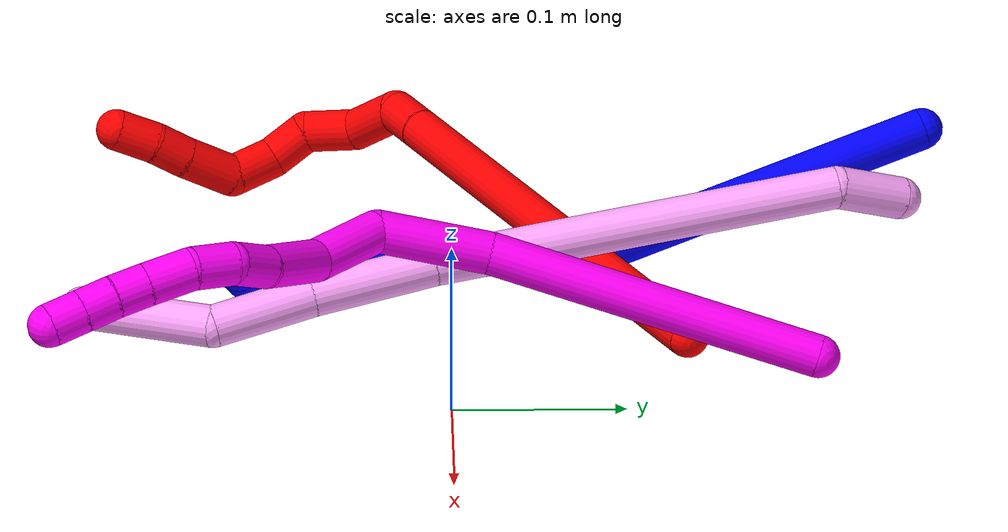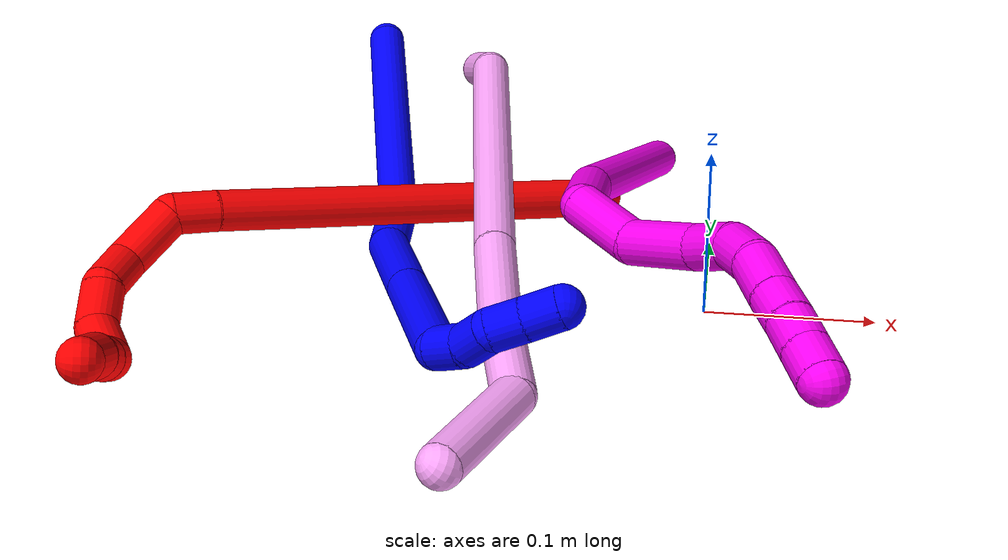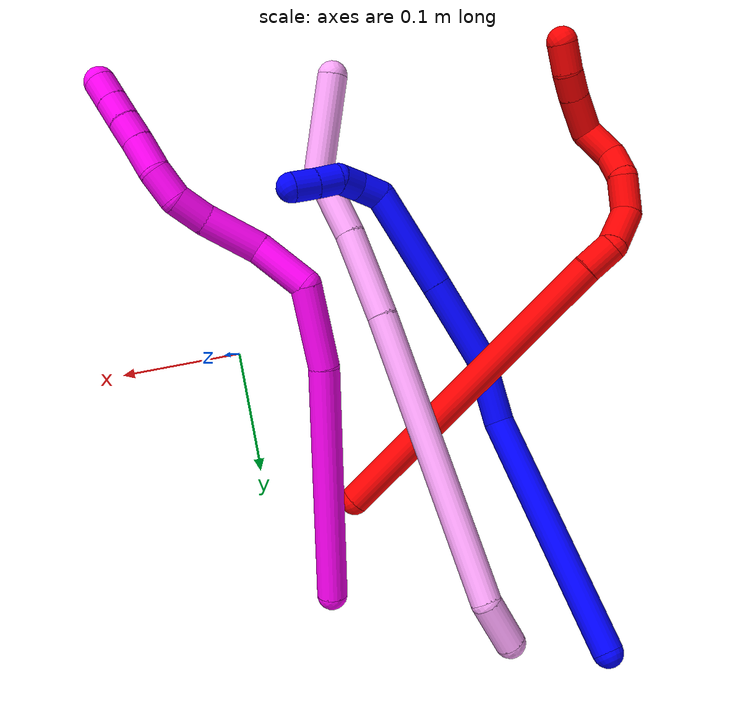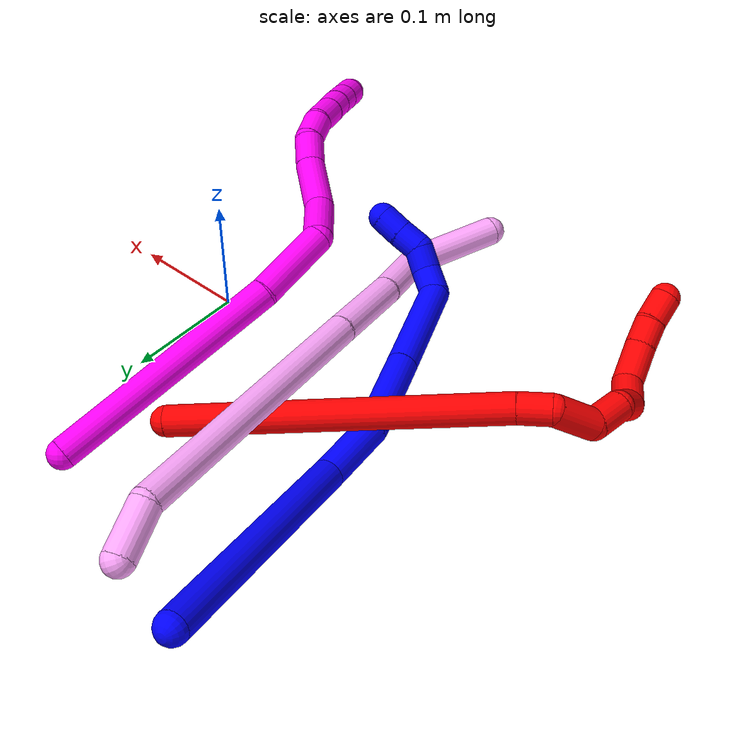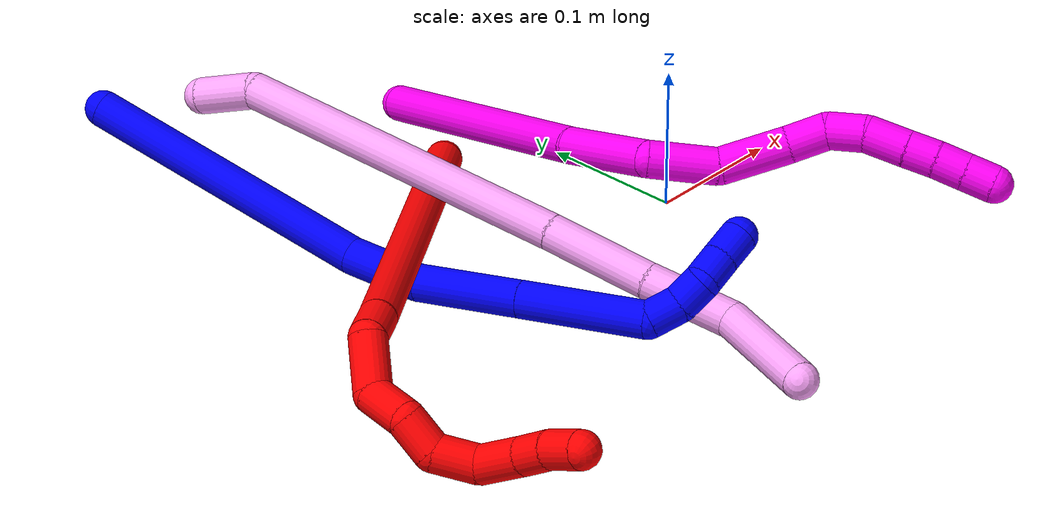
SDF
<sdf version="1.7">
 <world name="default">
  <model name="1">
   <static>0</static>
   <link name="1">
    <collision name="collision-cylinder-e_1_1_4">
     <pose>-0.000891 0.000561 -0.101064 -3.13605 -0.008818 2.01854</pose>
     <geometry><cylinder><radius>0.0125</radius><length>0.202139</length></cylinder></geometry>
     <surface>
      <friction><ode><mu>1.16</mu><mu2>1.16</mu2><slip1>0</slip1><slip2>0</slip2></ode></friction>
      <contact><ode><kp>1e+06</kp><kd>1</kd><max_vel>0</max_vel><min_depth>0.001</min_depth></ode></contact>
     </surface>
    </collision>
    <visual name="visual-cylinder-e_1_1_4">
     <pose>-0.000891 0.000561 -0.101064 -3.13605 -0.008818 2.01854</pose>
     <geometry><cylinder><radius>0.0125</radius><length>0.202139</length></cylinder></geometry>
     <material><ambient>0 0 1 1</ambient></material>
    </visual>
    <collision name="collision-cylinder-e_2_4_5">
     <pose>-0.005391 -0.00683 -0.228399 2.84769 -0.130734 -0.832766</pose>
     <geometry><cylinder><radius>0.0125</radius><length>0.055369</length></cylinder></geometry>
     <surface>
      <friction><ode><mu>1.16</mu><mu2>1.16</mu2><slip1>0</slip1><slip2>0</slip2></ode></friction>
      <contact><ode><kp>1e+06</kp><kd>1</kd><max_vel>0</max_vel><min_depth>0.001</min_depth></ode></contact>
     </surface>
    </collision>
    <visual name="visual-cylinder-e_2_4_5">
     <pose>-0.005391 -0.00683 -0.228399 2.84769 -0.130734 -0.832766</pose>
     <geometry><cylinder><radius>0.0125</radius><length>0.055369</length></cylinder></geometry>
     <material><ambient>0 0 1 1</ambient></material>
    </visual>
    <collision name="collision-cylinder-e_3_5_6">
     <pose>-0.003913 -0.026224 -0.288149 2.81227 0.142813 0.812967</pose>
     <geometry><cylinder><radius>0.0125</radius><length>0.071487</length></cylinder></geometry>
     <surface>
      <friction><ode><mu>1.16</mu><mu2>1.16</mu2><slip1>0</slip1><slip2>0</slip2></ode></friction>
      <contact><ode><kp>1e+06</kp><kd>1</kd><max_vel>0</max_vel><min_depth>0.001</min_depth></ode></contact>
     </surface>
    </collision>
    <visual name="visual-cylinder-e_3_5_6">
     <pose>-0.003913 -0.026224 -0.288149 2.81227 0.142813 0.812967</pose>
     <geometry><cylinder><radius>0.0125</radius><length>0.071487</length></cylinder></geometry>
     <material><ambient>0 0 1 1</ambient></material>
    </visual>
    <collision name="collision-cylinder-e_4_6_7">
     <pose>0.007696 -0.051219 -0.362388 2.82059 0.150687 0.872596</pose>
     <geometry><cylinder><radius>0.0125</radius><length>0.086893</length></cylinder></geometry>
     <surface>
      <friction><ode><mu>1.16</mu><mu2>1.16</mu2><slip1>0</slip1><slip2>0</slip2></ode></friction>
      <contact><ode><kp>1e+06</kp><kd>1</kd><max_vel>0</max_vel><min_depth>0.001</min_depth></ode></contact>
     </surface>
    </collision>
    <visual name="visual-cylinder-e_4_6_7">
     <pose>0.007696 -0.051219 -0.362388 2.82059 0.150687 0.872596</pose>
     <geometry><cylinder><radius>0.0125</radius><length>0.086893</length></cylinder></geometry>
     <material><ambient>0 0 1 1</ambient></material>
    </visual>
    <collision name="collision-cylinder-e_5_7_8">
     <pose>0.021947 -0.070338 -0.408962 2.37802 0.765078 1.57297</pose>
     <geometry><cylinder><radius>0.0125</radius><length>0.022319</length></cylinder></geometry>
     <surface>
      <friction><ode><mu>1.16</mu><mu2>1.16</mu2><slip1>0</slip1><slip2>0</slip2></ode></friction>
      <contact><ode><kp>1e+06</kp><kd>1</kd><max_vel>0</max_vel><min_depth>0.001</min_depth></ode></contact>
     </surface>
    </collision>
    <visual name="visual-cylinder-e_5_7_8">
     <pose>0.021947 -0.070338 -0.408962 2.37802 0.765078 1.57297</pose>
     <geometry><cylinder><radius>0.0125</radius><length>0.022319</length></cylinder></geometry>
     <material><ambient>0 0 1 1</ambient></material>
    </visual>
    <collision name="collision-cylinder-e_6_8_9">
     <pose>0.036129 -0.083281 -0.417648 1.94193 0.683937 0.959805</pose>
     <geometry><cylinder><radius>0.0125</radius><length>0.020424</length></cylinder></geometry>
     <surface>
      <friction><ode><mu>1.16</mu><mu2>1.16</mu2><slip1>0</slip1><slip2>0</slip2></ode></friction>
      <contact><ode><kp>1e+06</kp><kd>1</kd><max_vel>0</max_vel><min_depth>0.001</min_depth></ode></contact>
     </surface>
    </collision>
    <visual name="visual-cylinder-e_6_8_9">
     <pose>0.036129 -0.083281 -0.417648 1.94193 0.683937 0.959805</pose>
     <geometry><cylinder><radius>0.0125</radius><length>0.020424</length></cylinder></geometry>
     <material><ambient>0 0 1 1</ambient></material>
    </visual>
    <collision name="collision-cylinder-e_7_9_10">
     <pose>0.052145 -0.093931 -0.420988 1.71324 1.23783 1.37568</pose>
     <geometry><cylinder><radius>0.0125</radius><length>0.020239</length></cylinder></geometry>
     <surface>
      <friction><ode><mu>1.16</mu><mu2>1.16</mu2><slip1>0</slip1><slip2>0</slip2></ode></friction>
      <contact><ode><kp>1e+06</kp><kd>1</kd><max_vel>0</max_vel><min_depth>0.001</min_depth></ode></contact>
     </surface>
    </collision>
    <visual name="visual-cylinder-e_7_9_10">
     <pose>0.052145 -0.093931 -0.420988 1.71324 1.23783 1.37568</pose>
     <geometry><cylinder><radius>0.0125</radius><length>0.020239</length></cylinder></geometry>
     <material><ambient>0 0 1 1</ambient></material>
    </visual>
    <collision name="collision-cylinder-e_8_10_2">
     <pose>0.071502 -0.101093 -0.422223 1.76511 1.18638 1.37338</pose>
     <geometry><cylinder><radius>0.0125</radius><length>0.02113</length></cylinder></geometry>
     <surface>
      <friction><ode><mu>1.16</mu><mu2>1.16</mu2><slip1>0</slip1><slip2>0</slip2></ode></friction>
      <contact><ode><kp>1e+06</kp><kd>1</kd><max_vel>0</max_vel><min_depth>0.001</min_depth></ode></contact>
     </surface>
    </collision>
    <visual name="visual-cylinder-e_8_10_2">
     <pose>0.071502 -0.101093 -0.422223 1.76511 1.18638 1.37338</pose>
     <geometry><cylinder><radius>0.0125</radius><length>0.02113</length></cylinder></geometry>
     <material><ambient>0 0 1 1</ambient></material>
    </visual>
    <collision name="collision-sphere-2">
     <pose>0.081296 -0.10498 -0.422988 0 -0 0</pose>
     <geometry><sphere><radius>0.0125</radius></sphere></geometry>
     <surface>
      <friction><ode><mu>1.16</mu><mu2>1.16</mu2><slip1>0</slip1><slip2>0</slip2></ode></friction>
      <contact><ode><kp>1e+06</kp><kd>1</kd><max_vel>0</max_vel><min_depth>0.001</min_depth></ode></contact>
     </surface>
    </collision>
    <visual name="visual-sphere-2">
     <pose>0.081296 -0.10498 -0.422988 0 -0 0</pose>
     <geometry><sphere><radius>0.0125</radius></sphere></geometry>
     <material><ambient>0 0 1 1</ambient></material>
    </visual>
    <collision name="collision-sphere-10">
     <pose>0.061708 -0.097205 -0.421458 0 -0 0</pose>
     <geometry><sphere><radius>0.0125</radius></sphere></geometry>
     <surface>
      <friction><ode><mu>1.16</mu><mu2>1.16</mu2><slip1>0</slip1><slip2>0</slip2></ode></friction>
      <contact><ode><kp>1e+06</kp><kd>1</kd><max_vel>0</max_vel><min_depth>0.001</min_depth></ode></contact>
     </surface>
    </collision>
    <visual name="visual-sphere-10">
     <pose>0.061708 -0.097205 -0.421458 0 -0 0</pose>
     <geometry><sphere><radius>0.0125</radius></sphere></geometry>
     <material><ambient>0 0 1 1</ambient></material>
    </visual>
    <collision name="collision-sphere-9">
     <pose>0.042581 -0.090657 -0.420519 0 -0 0</pose>
     <geometry><sphere><radius>0.0125</radius></sphere></geometry>
     <surface>
      <friction><ode><mu>1.16</mu><mu2>1.16</mu2><slip1>0</slip1><slip2>0</slip2></ode></friction>
      <contact><ode><kp>1e+06</kp><kd>1</kd><max_vel>0</max_vel><min_depth>0.001</min_depth></ode></contact>
     </surface>
    </collision>
    <visual name="visual-sphere-9">
     <pose>0.042581 -0.090657 -0.420519 0 -0 0</pose>
     <geometry><sphere><radius>0.0125</radius></sphere></geometry>
     <material><ambient>0 0 1 1</ambient></material>
    </visual>
    <collision name="collision-sphere-4">
     <pose>-0.001782 0.001121 -0.202128 0 -0 0</pose>
     <geometry><sphere><radius>0.0125</radius></sphere></geometry>
     <surface>
      <friction><ode><mu>1.16</mu><mu2>1.16</mu2><slip1>0</slip1><slip2>0</slip2></ode></friction>
      <contact><ode><kp>1e+06</kp><kd>1</kd><max_vel>0</max_vel><min_depth>0.001</min_depth></ode></contact>
     </surface>
    </collision>
    <visual name="visual-sphere-4">
     <pose>-0.001782 0.001121 -0.202128 0 -0 0</pose>
     <geometry><sphere><radius>0.0125</radius></sphere></geometry>
     <material><ambient>0 0 1 1</ambient></material>
    </visual>
    <collision name="collision-sphere-1">
     <geometry><sphere><radius>0.0125</radius></sphere></geometry>
     <surface>
      <friction><ode><mu>1.16</mu><mu2>1.16</mu2><slip1>0</slip1><slip2>0</slip2></ode></friction>
      <contact><ode><kp>1e+06</kp><kd>1</kd><max_vel>0</max_vel><min_depth>0.001</min_depth></ode></contact>
     </surface>
    </collision>
    <visual name="visual-sphere-1">
     <geometry><sphere><radius>0.0125</radius></sphere></geometry>
     <material><ambient>0 0 1 1</ambient></material>
    </visual>
    <collision name="collision-sphere-8">
     <pose>0.029676 -0.075904 -0.414777 0 -0 0</pose>
     <geometry><sphere><radius>0.0125</radius></sphere></geometry>
     <surface>
      <friction><ode><mu>1.16</mu><mu2>1.16</mu2><slip1>0</slip1><slip2>0</slip2></ode></friction>
      <contact><ode><kp>1e+06</kp><kd>1</kd><max_vel>0</max_vel><min_depth>0.001</min_depth></ode></contact>
     </surface>
    </collision>
    <visual name="visual-sphere-8">
     <pose>0.029676 -0.075904 -0.414777 0 -0 0</pose>
     <geometry><sphere><radius>0.0125</radius></sphere></geometry>
     <material><ambient>0 0 1 1</ambient></material>
    </visual>
    <collision name="collision-sphere-5">
     <pose>-0.009 -0.014782 -0.254671 0 -0 0</pose>
     <geometry><sphere><radius>0.0125</radius></sphere></geometry>
     <surface>
      <friction><ode><mu>1.16</mu><mu2>1.16</mu2><slip1>0</slip1><slip2>0</slip2></ode></friction>
      <contact><ode><kp>1e+06</kp><kd>1</kd><max_vel>0</max_vel><min_depth>0.001</min_depth></ode></contact>
     </surface>
    </collision>
    <visual name="visual-sphere-5">
     <pose>-0.009 -0.014782 -0.254671 0 -0 0</pose>
     <geometry><sphere><radius>0.0125</radius></sphere></geometry>
     <material><ambient>0 0 1 1</ambient></material>
    </visual>
    <collision name="collision-sphere-6">
     <pose>0.001174 -0.037666 -0.321628 0 -0 0</pose>
     <geometry><sphere><radius>0.0125</radius></sphere></geometry>
     <surface>
      <friction><ode><mu>1.16</mu><mu2>1.16</mu2><slip1>0</slip1><slip2>0</slip2></ode></friction>
      <contact><ode><kp>1e+06</kp><kd>1</kd><max_vel>0</max_vel><min_depth>0.001</min_depth></ode></contact>
     </surface>
    </collision>
    <visual name="visual-sphere-6">
     <pose>0.001174 -0.037666 -0.321628 0 -0 0</pose>
     <geometry><sphere><radius>0.0125</radius></sphere></geometry>
     <material><ambient>0 0 1 1</ambient></material>
    </visual>
    <collision name="collision-sphere-7">
     <pose>0.014218 -0.064772 -0.403148 0 -0 0</pose>
     <geometry><sphere><radius>0.0125</radius></sphere></geometry>
     <surface>
      <friction><ode><mu>1.16</mu><mu2>1.16</mu2><slip1>0</slip1><slip2>0</slip2></ode></friction>
      <contact><ode><kp>1e+06</kp><kd>1</kd><max_vel>0</max_vel><min_depth>0.001</min_depth></ode></contact>
     </surface>
    </collision>
    <visual name="visual-sphere-7">
     <pose>0.014218 -0.064772 -0.403148 0 -0 0</pose>
     <geometry><sphere><radius>0.0125</radius></sphere></geometry>
     <material><ambient>0 0 1 1</ambient></material>
    </visual>
    <inertial>
     <pose>0.007409 -0.027796 -0.240525 0 -0 0</pose>
     <mass>0.5</mass>
     <inertia>
      <ixx>0.000463</ixx>
      <ixy>0</ixy>
      <ixz>0</ixz>
      <iyy>0.00092</iyy>
      <iyz>0</iyz>
      <izz>-1.1e-05</izz>
     </inertia>
    </inertial>
   </link>
   <pose>-0.249066 0.284091 0.068504 -1.29043 -0.061384 0.226186</pose>
  </model>
  <model name="2">
   <static>0</static>
   <link name="2">
    <collision name="collision-cylinder-e_1_1_4">
     <pose>-0.007382 -0.033591 0.129944 0.252968 -0.054948 -0.006989</pose>
     <geometry><cylinder><radius>0.0125</radius><length>0.268836</length></cylinder></geometry>
     <surface>
      <friction><ode><mu>1.16</mu><mu2>1.16</mu2><slip1>0</slip1><slip2>0</slip2></ode></friction>
      <contact><ode><kp>1e+06</kp><kd>1</kd><max_vel>0</max_vel><min_depth>0.001</min_depth></ode></contact>
     </surface>
    </collision>
    <visual name="visual-cylinder-e_1_1_4">
     <pose>-0.007382 -0.033591 0.129944 0.252968 -0.054948 -0.006989</pose>
     <geometry><cylinder><radius>0.0125</radius><length>0.268836</length></cylinder></geometry>
     <material><ambient>1 0 0 1</ambient></material>
    </visual>
    <collision name="collision-cylinder-e_2_4_5">
     <pose>-0.016049 -0.069549 0.273017 0.178331 -0.095969 -0.008586</pose>
     <geometry><cylinder><radius>0.0125</radius><length>0.026806</length></cylinder></geometry>
     <surface>
      <friction><ode><mu>1.16</mu><mu2>1.16</mu2><slip1>0</slip1><slip2>0</slip2></ode></friction>
      <contact><ode><kp>1e+06</kp><kd>1</kd><max_vel>0</max_vel><min_depth>0.001</min_depth></ode></contact>
     </surface>
    </collision>
    <visual name="visual-cylinder-e_2_4_5">
     <pose>-0.016049 -0.069549 0.273017 0.178331 -0.095969 -0.008586</pose>
     <geometry><cylinder><radius>0.0125</radius><length>0.026806</length></cylinder></geometry>
     <material><ambient>1 0 0 1</ambient></material>
    </visual>
    <collision name="collision-cylinder-e_3_5_6">
     <pose>-0.031309 -0.07594 0.29869 0.310493 -0.814962 -0.134903</pose>
     <geometry><cylinder><radius>0.0125</radius><length>0.038411</length></cylinder></geometry>
     <surface>
      <friction><ode><mu>1.16</mu><mu2>1.16</mu2><slip1>0</slip1><slip2>0</slip2></ode></friction>
      <contact><ode><kp>1e+06</kp><kd>1</kd><max_vel>0</max_vel><min_depth>0.001</min_depth></ode></contact>
     </surface>
    </collision>
    <visual name="visual-cylinder-e_3_5_6">
     <pose>-0.031309 -0.07594 0.29869 0.310493 -0.814962 -0.134903</pose>
     <geometry><cylinder><radius>0.0125</radius><length>0.038411</length></cylinder></geometry>
     <material><ambient>1 0 0 1</ambient></material>
    </visual>
    <collision name="collision-cylinder-e_4_6_7">
     <pose>-0.051244 -0.092518 0.317553 1.10435 -0.40099 -0.249118</pose>
     <geometry><cylinder><radius>0.0125</radius><length>0.03053</length></cylinder></geometry>
     <surface>
      <friction><ode><mu>1.16</mu><mu2>1.16</mu2><slip1>0</slip1><slip2>0</slip2></ode></friction>
      <contact><ode><kp>1e+06</kp><kd>1</kd><max_vel>0</max_vel><min_depth>0.001</min_depth></ode></contact>
     </surface>
    </collision>
    <visual name="visual-cylinder-e_4_6_7">
     <pose>-0.051244 -0.092518 0.317553 1.10435 -0.40099 -0.249118</pose>
     <geometry><cylinder><radius>0.0125</radius><length>0.03053</length></cylinder></geometry>
     <material><ambient>1 0 0 1</ambient></material>
    </visual>
    <collision name="collision-cylinder-e_5_7_8">
     <pose>-0.068055 -0.112166 0.325372 1.36276 -0.981766 -0.818044</pose>
     <geometry><cylinder><radius>0.0125</radius><length>0.026106</length></cylinder></geometry>
     <surface>
      <friction><ode><mu>1.16</mu><mu2>1.16</mu2><slip1>0</slip1><slip2>0</slip2></ode></friction>
      <contact><ode><kp>1e+06</kp><kd>1</kd><max_vel>0</max_vel><min_depth>0.001</min_depth></ode></contact>
     </surface>
    </collision>
    <visual name="visual-cylinder-e_5_7_8">
     <pose>-0.068055 -0.112166 0.325372 1.36276 -0.981766 -0.818044</pose>
     <geometry><cylinder><radius>0.0125</radius><length>0.026106</length></cylinder></geometry>
     <material><ambient>1 0 0 1</ambient></material>
    </visual>
    <collision name="collision-cylinder-e_6_8_9">
     <pose>-0.085267 -0.132155 0.323406 1.83319 -0.444466 -0.573111</pose>
     <geometry><cylinder><radius>0.0125</radius><length>0.029575</length></cylinder></geometry>
     <surface>
      <friction><ode><mu>1.16</mu><mu2>1.16</mu2><slip1>0</slip1><slip2>0</slip2></ode></friction>
      <contact><ode><kp>1e+06</kp><kd>1</kd><max_vel>0</max_vel><min_depth>0.001</min_depth></ode></contact>
     </surface>
    </collision>
    <visual name="visual-cylinder-e_6_8_9">
     <pose>-0.085267 -0.132155 0.323406 1.83319 -0.444466 -0.573111</pose>
     <geometry><cylinder><radius>0.0125</radius><length>0.029575</length></cylinder></geometry>
     <material><ambient>1 0 0 1</ambient></material>
    </visual>
    <collision name="collision-cylinder-e_7_9_10">
     <pose>-0.08858 -0.161394 0.322185 1.43447 0.182491 0.159271</pose>
     <geometry><cylinder><radius>0.0125</radius><length>0.033553</length></cylinder></geometry>
     <surface>
      <friction><ode><mu>1.16</mu><mu2>1.16</mu2><slip1>0</slip1><slip2>0</slip2></ode></friction>
      <contact><ode><kp>1e+06</kp><kd>1</kd><max_vel>0</max_vel><min_depth>0.001</min_depth></ode></contact>
     </surface>
    </collision>
    <visual name="visual-cylinder-e_7_9_10">
     <pose>-0.08858 -0.161394 0.322185 1.43447 0.182491 0.159271</pose>
     <geometry><cylinder><radius>0.0125</radius><length>0.033553</length></cylinder></geometry>
     <material><ambient>1 0 0 1</ambient></material>
    </visual>
    <collision name="collision-cylinder-e_8_10_11">
     <pose>-0.083094 -0.188044 0.326526 1.36993 0.228132 0.186631</pose>
     <geometry><cylinder><radius>0.0125</radius><length>0.021594</length></cylinder></geometry>
     <surface>
      <friction><ode><mu>1.16</mu><mu2>1.16</mu2><slip1>0</slip1><slip2>0</slip2></ode></friction>
      <contact><ode><kp>1e+06</kp><kd>1</kd><max_vel>0</max_vel><min_depth>0.001</min_depth></ode></contact>
     </surface>
    </collision>
    <visual name="visual-cylinder-e_8_10_11">
     <pose>-0.083094 -0.188044 0.326526 1.36993 0.228132 0.186631</pose>
     <geometry><cylinder><radius>0.0125</radius><length>0.021594</length></cylinder></geometry>
     <material><ambient>1 0 0 1</ambient></material>
    </visual>
    <collision name="collision-cylinder-e_9_11_2">
     <pose>-0.079792 -0.210084 0.332191 1.2757 0.070026 0.051913</pose>
     <geometry><cylinder><radius>0.0125</radius><length>0.024589</length></cylinder></geometry>
     <surface>
      <friction><ode><mu>1.16</mu><mu2>1.16</mu2><slip1>0</slip1><slip2>0</slip2></ode></friction>
      <contact><ode><kp>1e+06</kp><kd>1</kd><max_vel>0</max_vel><min_depth>0.001</min_depth></ode></contact>
     </surface>
    </collision>
    <visual name="visual-cylinder-e_9_11_2">
     <pose>-0.079792 -0.210084 0.332191 1.2757 0.070026 0.051913</pose>
     <geometry><cylinder><radius>0.0125</radius><length>0.024589</length></cylinder></geometry>
     <material><ambient>1 0 0 1</ambient></material>
    </visual>
    <collision name="collision-sphere-2">
     <pose>-0.078932 -0.221818 0.335758 0 -0 0</pose>
     <geometry><sphere><radius>0.0125</radius></sphere></geometry>
     <surface>
      <friction><ode><mu>1.16</mu><mu2>1.16</mu2><slip1>0</slip1><slip2>0</slip2></ode></friction>
      <contact><ode><kp>1e+06</kp><kd>1</kd><max_vel>0</max_vel><min_depth>0.001</min_depth></ode></contact>
     </surface>
    </collision>
    <visual name="visual-sphere-2">
     <pose>-0.078932 -0.221818 0.335758 0 -0 0</pose>
     <geometry><sphere><radius>0.0125</radius></sphere></geometry>
     <material><ambient>1 0 0 1</ambient></material>
    </visual>
    <collision name="collision-sphere-11">
     <pose>-0.080652 -0.19835 0.328624 0 -0 0</pose>
     <geometry><sphere><radius>0.0125</radius></sphere></geometry>
     <surface>
      <friction><ode><mu>1.16</mu><mu2>1.16</mu2><slip1>0</slip1><slip2>0</slip2></ode></friction>
      <contact><ode><kp>1e+06</kp><kd>1</kd><max_vel>0</max_vel><min_depth>0.001</min_depth></ode></contact>
     </surface>
    </collision>
    <visual name="visual-sphere-11">
     <pose>-0.080652 -0.19835 0.328624 0 -0 0</pose>
     <geometry><sphere><radius>0.0125</radius></sphere></geometry>
     <material><ambient>1 0 0 1</ambient></material>
    </visual>
    <collision name="collision-sphere-10">
     <pose>-0.085536 -0.177739 0.324428 0 -0 0</pose>
     <geometry><sphere><radius>0.0125</radius></sphere></geometry>
     <surface>
      <friction><ode><mu>1.16</mu><mu2>1.16</mu2><slip1>0</slip1><slip2>0</slip2></ode></friction>
      <contact><ode><kp>1e+06</kp><kd>1</kd><max_vel>0</max_vel><min_depth>0.001</min_depth></ode></contact>
     </surface>
    </collision>
    <visual name="visual-sphere-10">
     <pose>-0.085536 -0.177739 0.324428 0 -0 0</pose>
     <geometry><sphere><radius>0.0125</radius></sphere></geometry>
     <material><ambient>1 0 0 1</ambient></material>
    </visual>
    <collision name="collision-sphere-9">
     <pose>-0.091625 -0.145049 0.319943 0 -0 0</pose>
     <geometry><sphere><radius>0.0125</radius></sphere></geometry>
     <surface>
      <friction><ode><mu>1.16</mu><mu2>1.16</mu2><slip1>0</slip1><slip2>0</slip2></ode></friction>
      <contact><ode><kp>1e+06</kp><kd>1</kd><max_vel>0</max_vel><min_depth>0.001</min_depth></ode></contact>
     </surface>
    </collision>
    <visual name="visual-sphere-9">
     <pose>-0.091625 -0.145049 0.319943 0 -0 0</pose>
     <geometry><sphere><radius>0.0125</radius></sphere></geometry>
     <material><ambient>1 0 0 1</ambient></material>
    </visual>
    <collision name="collision-sphere-4">
     <pose>-0.014765 -0.067182 0.259887 0 -0 0</pose>
     <geometry><sphere><radius>0.0125</radius></sphere></geometry>
     <surface>
      <friction><ode><mu>1.16</mu><mu2>1.16</mu2><slip1>0</slip1><slip2>0</slip2></ode></friction>
      <contact><ode><kp>1e+06</kp><kd>1</kd><max_vel>0</max_vel><min_depth>0.001</min_depth></ode></contact>
     </surface>
    </collision>
    <visual name="visual-sphere-4">
     <pose>-0.014765 -0.067182 0.259887 0 -0 0</pose>
     <geometry><sphere><radius>0.0125</radius></sphere></geometry>
     <material><ambient>1 0 0 1</ambient></material>
    </visual>
    <collision name="collision-sphere-1">
     <geometry><sphere><radius>0.0125</radius></sphere></geometry>
     <surface>
      <friction><ode><mu>1.16</mu><mu2>1.16</mu2><slip1>0</slip1><slip2>0</slip2></ode></friction>
      <contact><ode><kp>1e+06</kp><kd>1</kd><max_vel>0</max_vel><min_depth>0.001</min_depth></ode></contact>
     </surface>
    </collision>
    <visual name="visual-sphere-1">
     <geometry><sphere><radius>0.0125</radius></sphere></geometry>
     <material><ambient>1 0 0 1</ambient></material>
    </visual>
    <collision name="collision-sphere-8">
     <pose>-0.078908 -0.119261 0.326869 0 -0 0</pose>
     <geometry><sphere><radius>0.0125</radius></sphere></geometry>
     <surface>
      <friction><ode><mu>1.16</mu><mu2>1.16</mu2><slip1>0</slip1><slip2>0</slip2></ode></friction>
      <contact><ode><kp>1e+06</kp><kd>1</kd><max_vel>0</max_vel><min_depth>0.001</min_depth></ode></contact>
     </surface>
    </collision>
    <visual name="visual-sphere-8">
     <pose>-0.078908 -0.119261 0.326869 0 -0 0</pose>
     <geometry><sphere><radius>0.0125</radius></sphere></geometry>
     <material><ambient>1 0 0 1</ambient></material>
    </visual>
    <collision name="collision-sphere-5">
     <pose>-0.017333 -0.071915 0.286147 0 -0 0</pose>
     <geometry><sphere><radius>0.0125</radius></sphere></geometry>
     <surface>
      <friction><ode><mu>1.16</mu><mu2>1.16</mu2><slip1>0</slip1><slip2>0</slip2></ode></friction>
      <contact><ode><kp>1e+06</kp><kd>1</kd><max_vel>0</max_vel><min_depth>0.001</min_depth></ode></contact>
     </surface>
    </collision>
    <visual name="visual-sphere-5">
     <pose>-0.017333 -0.071915 0.286147 0 -0 0</pose>
     <geometry><sphere><radius>0.0125</radius></sphere></geometry>
     <material><ambient>1 0 0 1</ambient></material>
    </visual>
    <collision name="collision-sphere-6">
     <pose>-0.045285 -0.079965 0.311233 0 -0 0</pose>
     <geometry><sphere><radius>0.0125</radius></sphere></geometry>
     <surface>
      <friction><ode><mu>1.16</mu><mu2>1.16</mu2><slip1>0</slip1><slip2>0</slip2></ode></friction>
      <contact><ode><kp>1e+06</kp><kd>1</kd><max_vel>0</max_vel><min_depth>0.001</min_depth></ode></contact>
     </surface>
    </collision>
    <visual name="visual-sphere-6">
     <pose>-0.045285 -0.079965 0.311233 0 -0 0</pose>
     <geometry><sphere><radius>0.0125</radius></sphere></geometry>
     <material><ambient>1 0 0 1</ambient></material>
    </visual>
    <collision name="collision-sphere-7">
     <pose>-0.057202 -0.10507 0.323874 0 -0 0</pose>
     <geometry><sphere><radius>0.0125</radius></sphere></geometry>
     <surface>
      <friction><ode><mu>1.16</mu><mu2>1.16</mu2><slip1>0</slip1><slip2>0</slip2></ode></friction>
      <contact><ode><kp>1e+06</kp><kd>1</kd><max_vel>0</max_vel><min_depth>0.001</min_depth></ode></contact>
     </surface>
    </collision>
    <visual name="visual-sphere-7">
     <pose>-0.057202 -0.10507 0.323874 0 -0 0</pose>
     <geometry><sphere><radius>0.0125</radius></sphere></geometry>
     <material><ambient>1 0 0 1</ambient></material>
    </visual>
    <inertial>
     <pose>-0.032418 -0.076229 0.215017 0 -0 0</pose>
     <mass>0.5</mass>
     <inertia>
      <ixx>0.001628</ixx>
      <ixy>0</ixy>
      <ixz>0</ixz>
      <iyy>0.00156</iyy>
      <iyz>0</iyz>
      <izz>0.000548</izz>
     </inertia>
    </inertial>
   </link>
   <pose>-0.073768 0.137513 0.012281 -1.12974 -1.24381 1.50241</pose>
  </model>
  <model name="4">
   <static>0</static>
   <link name="4">
    <collision name="collision-cylinder-e_1_1_4">
     <pose>0.012906 -0.015781 0.006094 1.20227 0.651697 0.45542</pose>
     <geometry><cylinder><radius>0.0125</radius><length>0.042556</length></cylinder></geometry>
     <surface>
      <friction><ode><mu>1.16</mu><mu2>1.16</mu2><slip1>0</slip1><slip2>0</slip2></ode></friction>
      <contact><ode><kp>1e+06</kp><kd>1</kd><max_vel>0</max_vel><min_depth>0.001</min_depth></ode></contact>
     </surface>
    </collision>
    <visual name="visual-cylinder-e_1_1_4">
     <pose>0.012906 -0.015781 0.006094 1.20227 0.651697 0.45542</pose>
     <geometry><cylinder><radius>0.0125</radius><length>0.042556</length></cylinder></geometry>
     <material><ambient>1 0.65098 0.996078 1</ambient></material>
    </visual>
    <collision name="collision-cylinder-e_2_4_5">
     <pose>0.049872 -0.147691 0.035991 1.36862 0.200251 0.163551</pose>
     <geometry><cylinder><radius>0.0125</radius><length>0.24192</length></cylinder></geometry>
     <surface>
      <friction><ode><mu>1.16</mu><mu2>1.16</mu2><slip1>0</slip1><slip2>0</slip2></ode></friction>
      <contact><ode><kp>1e+06</kp><kd>1</kd><max_vel>0</max_vel><min_depth>0.001</min_depth></ode></contact>
     </surface>
    </collision>
    <visual name="visual-cylinder-e_2_4_5">
     <pose>0.049872 -0.147691 0.035991 1.36862 0.200251 0.163551</pose>
     <geometry><cylinder><radius>0.0125</radius><length>0.24192</length></cylinder></geometry>
     <material><ambient>1 0.65098 0.996078 1</ambient></material>
    </visual>
    <collision name="collision-cylinder-e_3_5_6">
     <pose>0.080531 -0.299808 0.065178 1.42231 0.179378 0.154648</pose>
     <geometry><cylinder><radius>0.0125</radius><length>0.073964</length></cylinder></geometry>
     <surface>
      <friction><ode><mu>1.16</mu><mu2>1.16</mu2><slip1>0</slip1><slip2>0</slip2></ode></friction>
      <contact><ode><kp>1e+06</kp><kd>1</kd><max_vel>0</max_vel><min_depth>0.001</min_depth></ode></contact>
     </surface>
    </collision>
    <visual name="visual-cylinder-e_3_5_6">
     <pose>0.080531 -0.299808 0.065178 1.42231 0.179378 0.154648</pose>
     <geometry><cylinder><radius>0.0125</radius><length>0.073964</length></cylinder></geometry>
     <material><ambient>1 0.65098 0.996078 1</ambient></material>
    </visual>
    <collision name="collision-cylinder-e_4_6_7">
     <pose>0.093498 -0.365541 0.07275 1.49735 0.210353 0.195543</pose>
     <geometry><cylinder><radius>0.0125</radius><length>0.060996</length></cylinder></geometry>
     <surface>
      <friction><ode><mu>1.16</mu><mu2>1.16</mu2><slip1>0</slip1><slip2>0</slip2></ode></friction>
      <contact><ode><kp>1e+06</kp><kd>1</kd><max_vel>0</max_vel><min_depth>0.001</min_depth></ode></contact>
     </surface>
    </collision>
    <visual name="visual-cylinder-e_4_6_7">
     <pose>0.093498 -0.365541 0.07275 1.49735 0.210353 0.195543</pose>
     <geometry><cylinder><radius>0.0125</radius><length>0.060996</length></cylinder></geometry>
     <material><ambient>1 0.65098 0.996078 1</ambient></material>
    </visual>
    <collision name="collision-cylinder-e_5_7_2">
     <pose>0.099235 -0.427062 0.099689 0.909054 -0.015677 -0.007661</pose>
     <geometry><cylinder><radius>0.0125</radius><length>0.080564</length></cylinder></geometry>
     <surface>
      <friction><ode><mu>1.16</mu><mu2>1.16</mu2><slip1>0</slip1><slip2>0</slip2></ode></friction>
      <contact><ode><kp>1e+06</kp><kd>1</kd><max_vel>0</max_vel><min_depth>0.001</min_depth></ode></contact>
     </surface>
    </collision>
    <visual name="visual-cylinder-e_5_7_2">
     <pose>0.099235 -0.427062 0.099689 0.909054 -0.015677 -0.007661</pose>
     <geometry><cylinder><radius>0.0125</radius><length>0.080564</length></cylinder></geometry>
     <material><ambient>1 0.65098 0.996078 1</ambient></material>
    </visual>
    <collision name="collision-sphere-2">
     <pose>0.098603 -0.458838 0.124439 0 -0 0</pose>
     <geometry><sphere><radius>0.0125</radius></sphere></geometry>
     <surface>
      <friction><ode><mu>1.16</mu><mu2>1.16</mu2><slip1>0</slip1><slip2>0</slip2></ode></friction>
      <contact><ode><kp>1e+06</kp><kd>1</kd><max_vel>0</max_vel><min_depth>0.001</min_depth></ode></contact>
     </surface>
    </collision>
    <visual name="visual-sphere-2">
     <pose>0.098603 -0.458838 0.124439 0 -0 0</pose>
     <geometry><sphere><radius>0.0125</radius></sphere></geometry>
     <material><ambient>1 0.65098 0.996078 1</ambient></material>
    </visual>
    <collision name="collision-sphere-7">
     <pose>0.099866 -0.395287 0.074939 0 -0 0</pose>
     <geometry><sphere><radius>0.0125</radius></sphere></geometry>
     <surface>
      <friction><ode><mu>1.16</mu><mu2>1.16</mu2><slip1>0</slip1><slip2>0</slip2></ode></friction>
      <contact><ode><kp>1e+06</kp><kd>1</kd><max_vel>0</max_vel><min_depth>0.001</min_depth></ode></contact>
     </surface>
    </collision>
    <visual name="visual-sphere-7">
     <pose>0.099866 -0.395287 0.074939 0 -0 0</pose>
     <geometry><sphere><radius>0.0125</radius></sphere></geometry>
     <material><ambient>1 0.65098 0.996078 1</ambient></material>
    </visual>
    <collision name="collision-sphere-6">
     <pose>0.08713 -0.335796 0.070562 0 -0 0</pose>
     <geometry><sphere><radius>0.0125</radius></sphere></geometry>
     <surface>
      <friction><ode><mu>1.16</mu><mu2>1.16</mu2><slip1>0</slip1><slip2>0</slip2></ode></friction>
      <contact><ode><kp>1e+06</kp><kd>1</kd><max_vel>0</max_vel><min_depth>0.001</min_depth></ode></contact>
     </surface>
    </collision>
    <visual name="visual-sphere-6">
     <pose>0.08713 -0.335796 0.070562 0 -0 0</pose>
     <geometry><sphere><radius>0.0125</radius></sphere></geometry>
     <material><ambient>1 0.65098 0.996078 1</ambient></material>
    </visual>
    <collision name="collision-sphere-5">
     <pose>0.073933 -0.263819 0.059795 0 -0 0</pose>
     <geometry><sphere><radius>0.0125</radius></sphere></geometry>
     <surface>
      <friction><ode><mu>1.16</mu><mu2>1.16</mu2><slip1>0</slip1><slip2>0</slip2></ode></friction>
      <contact><ode><kp>1e+06</kp><kd>1</kd><max_vel>0</max_vel><min_depth>0.001</min_depth></ode></contact>
     </surface>
    </collision>
    <visual name="visual-sphere-5">
     <pose>0.073933 -0.263819 0.059795 0 -0 0</pose>
     <geometry><sphere><radius>0.0125</radius></sphere></geometry>
     <material><ambient>1 0.65098 0.996078 1</ambient></material>
    </visual>
    <collision name="collision-sphere-1">
     <geometry><sphere><radius>0.0125</radius></sphere></geometry>
     <surface>
      <friction><ode><mu>1.16</mu><mu2>1.16</mu2><slip1>0</slip1><slip2>0</slip2></ode></friction>
      <contact><ode><kp>1e+06</kp><kd>1</kd><max_vel>0</max_vel><min_depth>0.001</min_depth></ode></contact>
     </surface>
    </collision>
    <visual name="visual-sphere-1">
     <geometry><sphere><radius>0.0125</radius></sphere></geometry>
     <material><ambient>1 0.65098 0.996078 1</ambient></material>
    </visual>
    <collision name="collision-sphere-4">
     <pose>0.025812 -0.031562 0.012188 0 -0 0</pose>
     <geometry><sphere><radius>0.0125</radius></sphere></geometry>
     <surface>
      <friction><ode><mu>1.16</mu><mu2>1.16</mu2><slip1>0</slip1><slip2>0</slip2></ode></friction>
      <contact><ode><kp>1e+06</kp><kd>1</kd><max_vel>0</max_vel><min_depth>0.001</min_depth></ode></contact>
     </surface>
    </collision>
    <visual name="visual-sphere-4">
     <pose>0.025812 -0.031562 0.012188 0 -0 0</pose>
     <geometry><sphere><radius>0.0125</radius></sphere></geometry>
     <material><ambient>1 0.65098 0.996078 1</ambient></material>
    </visual>
    <inertial>
     <pose>0.064537 -0.230557 0.052512 0 -0 0</pose>
     <mass>0.5</mass>
     <inertia>
      <ixx>0.001468</ixx>
      <ixy>0</ixy>
      <ixz>0</ixz>
      <iyy>0.000481</iyy>
      <iyz>0</iyz>
      <izz>0.000999</izz>
     </inertia>
    </inertial>
   </link>
   <pose>-0.176051 0.266503 0.054795 0.622891 -0.817288 -0.285945</pose>
  </model>
  <model name="10">
   <static>0</static>
   <link name="10">
    <collision name="collision-cylinder-e_1_1_4">
     <pose>-0.02927 -0.065895 -0.067944 2.3715 -0.299922 -0.713721</pose>
     <geometry><cylinder><radius>0.0125</radius><length>0.198144</length></cylinder></geometry>
     <surface>
      <friction><ode><mu>1.16</mu><mu2>1.16</mu2><slip1>0</slip1><slip2>0</slip2></ode></friction>
      <contact><ode><kp>1e+06</kp><kd>1</kd><max_vel>0</max_vel><min_depth>0.001</min_depth></ode></contact>
     </surface>
    </collision>
    <visual name="visual-cylinder-e_1_1_4">
     <pose>-0.02927 -0.065895 -0.067944 2.3715 -0.299922 -0.713721</pose>
     <geometry><cylinder><radius>0.0125</radius><length>0.198144</length></cylinder></geometry>
     <material><ambient>1 0 0.964706 1</ambient></material>
    </visual>
    <collision name="collision-cylinder-e_2_4_5">
     <pose>-0.067446 -0.15818 -0.154431 2.18331 -0.269396 -0.510337</pose>
     <geometry><cylinder><radius>0.0125</radius><length>0.066921</length></cylinder></geometry>
     <surface>
      <friction><ode><mu>1.16</mu><mu2>1.16</mu2><slip1>0</slip1><slip2>0</slip2></ode></friction>
      <contact><ode><kp>1e+06</kp><kd>1</kd><max_vel>0</max_vel><min_depth>0.001</min_depth></ode></contact>
     </surface>
    </collision>
    <visual name="visual-cylinder-e_2_4_5">
     <pose>-0.067446 -0.15818 -0.154431 2.18331 -0.269396 -0.510337</pose>
     <geometry><cylinder><radius>0.0125</radius><length>0.066921</length></cylinder></geometry>
     <material><ambient>1 0 0.964706 1</ambient></material>
    </visual>
    <collision name="collision-cylinder-e_3_5_6">
     <pose>-0.075788 -0.207802 -0.170547 1.46668 0.02413 0.02174</pose>
     <geometry><cylinder><radius>0.0125</radius><length>0.046732</length></cylinder></geometry>
     <surface>
      <friction><ode><mu>1.16</mu><mu2>1.16</mu2><slip1>0</slip1><slip2>0</slip2></ode></friction>
      <contact><ode><kp>1e+06</kp><kd>1</kd><max_vel>0</max_vel><min_depth>0.001</min_depth></ode></contact>
     </surface>
    </collision>
    <visual name="visual-cylinder-e_3_5_6">
     <pose>-0.075788 -0.207802 -0.170547 1.46668 0.02413 0.02174</pose>
     <geometry><cylinder><radius>0.0125</radius><length>0.046732</length></cylinder></geometry>
     <material><ambient>1 0 0.964706 1</ambient></material>
    </visual>
    <collision name="collision-cylinder-e_4_6_7">
     <pose>-0.083199 -0.252442 -0.161834 1.28519 -0.343283 -0.258089</pose>
     <geometry><cylinder><radius>0.0125</radius><length>0.047388</length></cylinder></geometry>
     <surface>
      <friction><ode><mu>1.16</mu><mu2>1.16</mu2><slip1>0</slip1><slip2>0</slip2></ode></friction>
      <contact><ode><kp>1e+06</kp><kd>1</kd><max_vel>0</max_vel><min_depth>0.001</min_depth></ode></contact>
     </surface>
    </collision>
    <visual name="visual-cylinder-e_4_6_7">
     <pose>-0.083199 -0.252442 -0.161834 1.28519 -0.343283 -0.258089</pose>
     <geometry><cylinder><radius>0.0125</radius><length>0.047388</length></cylinder></geometry>
     <material><ambient>1 0 0.964706 1</ambient></material>
    </visual>
    <collision name="collision-cylinder-e_5_7_8">
     <pose>-0.097195 -0.285876 -0.153714 1.41947 -0.459581 -0.396629</pose>
     <geometry><cylinder><radius>0.0125</radius><length>0.027147</length></cylinder></geometry>
     <surface>
      <friction><ode><mu>1.16</mu><mu2>1.16</mu2><slip1>0</slip1><slip2>0</slip2></ode></friction>
      <contact><ode><kp>1e+06</kp><kd>1</kd><max_vel>0</max_vel><min_depth>0.001</min_depth></ode></contact>
     </surface>
    </collision>
    <visual name="visual-cylinder-e_5_7_8">
     <pose>-0.097195 -0.285876 -0.153714 1.41947 -0.459581 -0.396629</pose>
     <geometry><cylinder><radius>0.0125</radius><length>0.027147</length></cylinder></geometry>
     <material><ambient>1 0 0.964706 1</ambient></material>
    </visual>
    <collision name="collision-cylinder-e_6_8_9">
     <pose>-0.105062 -0.310399 -0.15403 1.74113 -0.144608 -0.171482</pose>
     <geometry><cylinder><radius>0.0125</radius><length>0.025627</length></cylinder></geometry>
     <surface>
      <friction><ode><mu>1.16</mu><mu2>1.16</mu2><slip1>0</slip1><slip2>0</slip2></ode></friction>
      <contact><ode><kp>1e+06</kp><kd>1</kd><max_vel>0</max_vel><min_depth>0.001</min_depth></ode></contact>
     </surface>
    </collision>
    <visual name="visual-cylinder-e_6_8_9">
     <pose>-0.105062 -0.310399 -0.15403 1.74113 -0.144608 -0.171482</pose>
     <geometry><cylinder><radius>0.0125</radius><length>0.025627</length></cylinder></geometry>
     <material><ambient>1 0 0.964706 1</ambient></material>
    </visual>
    <collision name="collision-cylinder-e_7_9_10">
     <pose>-0.105132 -0.336287 -0.159525 1.81565 0.128039 0.163825</pose>
     <geometry><cylinder><radius>0.0125</radius><length>0.027835</length></cylinder></geometry>
     <surface>
      <friction><ode><mu>1.16</mu><mu2>1.16</mu2><slip1>0</slip1><slip2>0</slip2></ode></friction>
      <contact><ode><kp>1e+06</kp><kd>1</kd><max_vel>0</max_vel><min_depth>0.001</min_depth></ode></contact>
     </surface>
    </collision>
    <visual name="visual-cylinder-e_7_9_10">
     <pose>-0.105132 -0.336287 -0.159525 1.81565 0.128039 0.163825</pose>
     <geometry><cylinder><radius>0.0125</radius><length>0.027835</length></cylinder></geometry>
     <material><ambient>1 0 0.964706 1</ambient></material>
    </visual>
    <collision name="collision-cylinder-e_8_10_11">
     <pose>-0.10203 -0.359432 -0.164897 1.77561 0.13217 0.162326</pose>
     <geometry><cylinder><radius>0.0125</radius><length>0.020098</length></cylinder></geometry>
     <surface>
      <friction><ode><mu>1.16</mu><mu2>1.16</mu2><slip1>0</slip1><slip2>0</slip2></ode></friction>
      <contact><ode><kp>1e+06</kp><kd>1</kd><max_vel>0</max_vel><min_depth>0.001</min_depth></ode></contact>
     </surface>
    </collision>
    <visual name="visual-cylinder-e_8_10_11">
     <pose>-0.10203 -0.359432 -0.164897 1.77561 0.13217 0.162326</pose>
     <geometry><cylinder><radius>0.0125</radius><length>0.020098</length></cylinder></geometry>
     <material><ambient>1 0 0.964706 1</ambient></material>
    </visual>
    <collision name="collision-cylinder-e_9_11_12">
     <pose>-0.098725 -0.378784 -0.168965 1.78036 0.199144 0.245529</pose>
     <geometry><cylinder><radius>0.0125</radius><length>0.020025</length></cylinder></geometry>
     <surface>
      <friction><ode><mu>1.16</mu><mu2>1.16</mu2><slip1>0</slip1><slip2>0</slip2></ode></friction>
      <contact><ode><kp>1e+06</kp><kd>1</kd><max_vel>0</max_vel><min_depth>0.001</min_depth></ode></contact>
     </surface>
    </collision>
    <visual name="visual-cylinder-e_9_11_12">
     <pose>-0.098725 -0.378784 -0.168965 1.78036 0.199144 0.245529</pose>
     <geometry><cylinder><radius>0.0125</radius><length>0.020025</length></cylinder></geometry>
     <material><ambient>1 0 0.964706 1</ambient></material>
    </visual>
    <collision name="collision-cylinder-e_10_12_2">
     <pose>-0.094784 -0.398015 -0.173067 1.78157 0.196538 0.242625</pose>
     <geometry><cylinder><radius>0.0125</radius><length>0.020084</length></cylinder></geometry>
     <surface>
      <friction><ode><mu>1.16</mu><mu2>1.16</mu2><slip1>0</slip1><slip2>0</slip2></ode></friction>
      <contact><ode><kp>1e+06</kp><kd>1</kd><max_vel>0</max_vel><min_depth>0.001</min_depth></ode></contact>
     </surface>
    </collision>
    <visual name="visual-cylinder-e_10_12_2">
     <pose>-0.094784 -0.398015 -0.173067 1.78157 0.196538 0.242625</pose>
     <geometry><cylinder><radius>0.0125</radius><length>0.020084</length></cylinder></geometry>
     <material><ambient>1 0 0.964706 1</ambient></material>
    </visual>
    <collision name="collision-sphere-2">
     <pose>-0.092823 -0.407646 -0.175128 0 -0 0</pose>
     <geometry><sphere><radius>0.0125</radius></sphere></geometry>
     <surface>
      <friction><ode><mu>1.16</mu><mu2>1.16</mu2><slip1>0</slip1><slip2>0</slip2></ode></friction>
      <contact><ode><kp>1e+06</kp><kd>1</kd><max_vel>0</max_vel><min_depth>0.001</min_depth></ode></contact>
     </surface>
    </collision>
    <visual name="visual-sphere-2">
     <pose>-0.092823 -0.407646 -0.175128 0 -0 0</pose>
     <geometry><sphere><radius>0.0125</radius></sphere></geometry>
     <material><ambient>1 0 0.964706 1</ambient></material>
    </visual>
    <collision name="collision-sphere-12">
     <pose>-0.096744 -0.388384 -0.171006 0 -0 0</pose>
     <geometry><sphere><radius>0.0125</radius></sphere></geometry>
     <surface>
      <friction><ode><mu>1.16</mu><mu2>1.16</mu2><slip1>0</slip1><slip2>0</slip2></ode></friction>
      <contact><ode><kp>1e+06</kp><kd>1</kd><max_vel>0</max_vel><min_depth>0.001</min_depth></ode></contact>
     </surface>
    </collision>
    <visual name="visual-sphere-12">
     <pose>-0.096744 -0.388384 -0.171006 0 -0 0</pose>
     <geometry><sphere><radius>0.0125</radius></sphere></geometry>
     <material><ambient>1 0 0.964706 1</ambient></material>
    </visual>
    <collision name="collision-sphere-11">
     <pose>-0.100706 -0.369185 -0.166923 0 -0 0</pose>
     <geometry><sphere><radius>0.0125</radius></sphere></geometry>
     <surface>
      <friction><ode><mu>1.16</mu><mu2>1.16</mu2><slip1>0</slip1><slip2>0</slip2></ode></friction>
      <contact><ode><kp>1e+06</kp><kd>1</kd><max_vel>0</max_vel><min_depth>0.001</min_depth></ode></contact>
     </surface>
    </collision>
    <visual name="visual-sphere-11">
     <pose>-0.100706 -0.369185 -0.166923 0 -0 0</pose>
     <geometry><sphere><radius>0.0125</radius></sphere></geometry>
     <material><ambient>1 0 0.964706 1</ambient></material>
    </visual>
    <collision name="collision-sphere-10">
     <pose>-0.103355 -0.349679 -0.162871 0 -0 0</pose>
     <geometry><sphere><radius>0.0125</radius></sphere></geometry>
     <surface>
      <friction><ode><mu>1.16</mu><mu2>1.16</mu2><slip1>0</slip1><slip2>0</slip2></ode></friction>
      <contact><ode><kp>1e+06</kp><kd>1</kd><max_vel>0</max_vel><min_depth>0.001</min_depth></ode></contact>
     </surface>
    </collision>
    <visual name="visual-sphere-10">
     <pose>-0.103355 -0.349679 -0.162871 0 -0 0</pose>
     <geometry><sphere><radius>0.0125</radius></sphere></geometry>
     <material><ambient>1 0 0.964706 1</ambient></material>
    </visual>
    <collision name="collision-sphere-9">
     <pose>-0.106909 -0.322895 -0.156179 0 -0 0</pose>
     <geometry><sphere><radius>0.0125</radius></sphere></geometry>
     <surface>
      <friction><ode><mu>1.16</mu><mu2>1.16</mu2><slip1>0</slip1><slip2>0</slip2></ode></friction>
      <contact><ode><kp>1e+06</kp><kd>1</kd><max_vel>0</max_vel><min_depth>0.001</min_depth></ode></contact>
     </surface>
    </collision>
    <visual name="visual-sphere-9">
     <pose>-0.106909 -0.322895 -0.156179 0 -0 0</pose>
     <geometry><sphere><radius>0.0125</radius></sphere></geometry>
     <material><ambient>1 0 0.964706 1</ambient></material>
    </visual>
    <collision name="collision-sphere-4">
     <pose>-0.058541 -0.13179 -0.135888 0 -0 0</pose>
     <geometry><sphere><radius>0.0125</radius></sphere></geometry>
     <surface>
      <friction><ode><mu>1.16</mu><mu2>1.16</mu2><slip1>0</slip1><slip2>0</slip2></ode></friction>
      <contact><ode><kp>1e+06</kp><kd>1</kd><max_vel>0</max_vel><min_depth>0.001</min_depth></ode></contact>
     </surface>
    </collision>
    <visual name="visual-sphere-4">
     <pose>-0.058541 -0.13179 -0.135888 0 -0 0</pose>
     <geometry><sphere><radius>0.0125</radius></sphere></geometry>
     <material><ambient>1 0 0.964706 1</ambient></material>
    </visual>
    <collision name="collision-sphere-1">
     <geometry><sphere><radius>0.0125</radius></sphere></geometry>
     <surface>
      <friction><ode><mu>1.16</mu><mu2>1.16</mu2><slip1>0</slip1><slip2>0</slip2></ode></friction>
      <contact><ode><kp>1e+06</kp><kd>1</kd><max_vel>0</max_vel><min_depth>0.001</min_depth></ode></contact>
     </surface>
    </collision>
    <visual name="visual-sphere-1">
     <geometry><sphere><radius>0.0125</radius></sphere></geometry>
     <material><ambient>1 0 0.964706 1</ambient></material>
    </visual>
    <collision name="collision-sphere-8">
     <pose>-0.103216 -0.297902 -0.15188 0 -0 0</pose>
     <geometry><sphere><radius>0.0125</radius></sphere></geometry>
     <surface>
      <friction><ode><mu>1.16</mu><mu2>1.16</mu2><slip1>0</slip1><slip2>0</slip2></ode></friction>
      <contact><ode><kp>1e+06</kp><kd>1</kd><max_vel>0</max_vel><min_depth>0.001</min_depth></ode></contact>
     </surface>
    </collision>
    <visual name="visual-sphere-8">
     <pose>-0.103216 -0.297902 -0.15188 0 -0 0</pose>
     <geometry><sphere><radius>0.0125</radius></sphere></geometry>
     <material><ambient>1 0 0.964706 1</ambient></material>
    </visual>
    <collision name="collision-sphere-5">
     <pose>-0.076352 -0.18457 -0.172975 0 -0 0</pose>
     <geometry><sphere><radius>0.0125</radius></sphere></geometry>
     <surface>
      <friction><ode><mu>1.16</mu><mu2>1.16</mu2><slip1>0</slip1><slip2>0</slip2></ode></friction>
      <contact><ode><kp>1e+06</kp><kd>1</kd><max_vel>0</max_vel><min_depth>0.001</min_depth></ode></contact>
     </surface>
    </collision>
    <visual name="visual-sphere-5">
     <pose>-0.076352 -0.18457 -0.172975 0 -0 0</pose>
     <geometry><sphere><radius>0.0125</radius></sphere></geometry>
     <material><ambient>1 0 0.964706 1</ambient></material>
    </visual>
    <collision name="collision-sphere-6">
     <pose>-0.075224 -0.231035 -0.16812 0 -0 0</pose>
     <geometry><sphere><radius>0.0125</radius></sphere></geometry>
     <surface>
      <friction><ode><mu>1.16</mu><mu2>1.16</mu2><slip1>0</slip1><slip2>0</slip2></ode></friction>
      <contact><ode><kp>1e+06</kp><kd>1</kd><max_vel>0</max_vel><min_depth>0.001</min_depth></ode></contact>
     </surface>
    </collision>
    <visual name="visual-sphere-6">
     <pose>-0.075224 -0.231035 -0.16812 0 -0 0</pose>
     <geometry><sphere><radius>0.0125</radius></sphere></geometry>
     <material><ambient>1 0 0.964706 1</ambient></material>
    </visual>
    <collision name="collision-sphere-7">
     <pose>-0.091174 -0.27385 -0.155548 0 -0 0</pose>
     <geometry><sphere><radius>0.0125</radius></sphere></geometry>
     <surface>
      <friction><ode><mu>1.16</mu><mu2>1.16</mu2><slip1>0</slip1><slip2>0</slip2></ode></friction>
      <contact><ode><kp>1e+06</kp><kd>1</kd><max_vel>0</max_vel><min_depth>0.001</min_depth></ode></contact>
     </surface>
    </collision>
    <visual name="visual-sphere-7">
     <pose>-0.091174 -0.27385 -0.155548 0 -0 0</pose>
     <geometry><sphere><radius>0.0125</radius></sphere></geometry>
     <material><ambient>1 0 0.964706 1</ambient></material>
    </visual>
    <inertial>
     <pose>-0.063972 -0.186388 -0.124341 0 -0 0</pose>
     <mass>0.5</mass>
     <inertia>
      <ixx>9.6e-05</ixx>
      <ixy>0</ixy>
      <ixz>0</ixz>
      <iyy>-0.000732</iyy>
      <iyz>0</iyz>
      <izz>0.000681</izz>
     </inertia>
    </inertial>
   </link>
   <pose>-0.040875 0.211569 0.013552 2.02561 1.48255 2.64271</pose>
  </model>
 </world>
</sdf>
